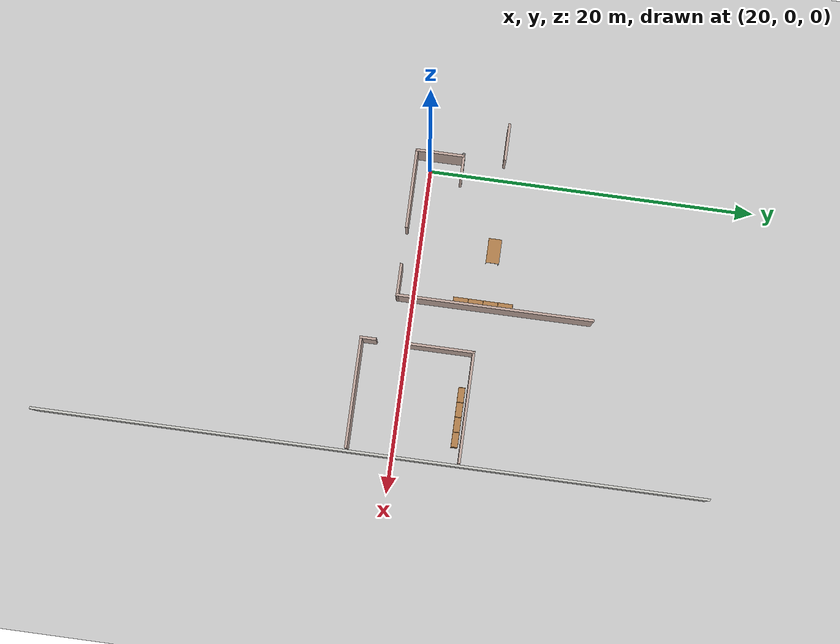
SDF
<sdf version="1.6">
 <world name="default">
  <model name="ground_plane">
   <static>1</static>
   <link name="link">
    <collision name="collision">
     <geometry><plane><normal>0 0 1</normal><size>100 100</size></plane></geometry>
     <surface><friction><ode><mu>100</mu><mu2>50</mu2></ode></friction></surface>
    </collision>
    <visual name="visual">
     <cast_shadows>0</cast_shadows>
     <geometry><plane><normal>0 0 1</normal><size>100 100</size></plane></geometry>
     <material>
      <script><uri>file://media/materials/scripts/gazebo.material</uri><name>Gazebo/Grey</name></script>
     </material>
    </visual>
   </link>
  </model>
  <model name="floor">
   <link name="Wall_11">
    <pose>36.55 -1e-06 0 0 -0 1.5708</pose>
    <visual name="Wall_11_Visual">
     <pose>0 0 1.25 0 -0 0</pose>
     <geometry><box><size>40.75 0.15 2.5</size></box></geometry>
     <material>
      <script><uri>file://media/materials/scripts/gazebo.material</uri><name>Gazebo/CeilingTiled</name></script>
      <ambient>0.760784 0.662745 0.627451 1</ambient>
     </material>
     <meta><layer>0</layer></meta>
    </visual>
    <collision name="Wall_11_Collision">
     <pose>0 0 1.25 0 -0 0</pose>
     <geometry><box><size>40.75 0.15 2.5</size></box></geometry>
     <surface>
      <friction>
       <ode><mu>1</mu><mu2>1</mu2><fdir1>0 0 0</fdir1><slip1>0</slip1><slip2>0</slip2></ode>
       <torsional>
        <coefficient>1</coefficient>
        <patch_radius>0</patch_radius>
        <surface_radius>0</surface_radius>
        <use_patch_radius>1</use_patch_radius>
        <ode><slip>0</slip></ode>
       </torsional>
      </friction>
      <bounce><restitution_coefficient>0</restitution_coefficient><threshold>1e+06</threshold></bounce>
      <contact>
       <collide_without_contact>0</collide_without_contact>
       <collide_without_contact_bitmask>1</collide_without_contact_bitmask>
       <collide_bitmask>1</collide_bitmask>
       <ode>
        <soft_cfm>0</soft_cfm>
        <soft_erp>0.2</soft_erp>
        <kp>1e+13</kp>
        <kd>1</kd>
        <max_vel>0.01</max_vel>
        <min_depth>0</min_depth>
       </ode>
       <bullet>
        <split_impulse>1</split_impulse>
        <split_impulse_penetration_threshold>-0.01</split_impulse_penetration_threshold>
        <soft_cfm>0</soft_cfm>
        <soft_erp>0.2</soft_erp>
        <kp>1e+13</kp>
        <kd>1</kd>
       </bullet>
      </contact>
     </surface>
    </collision>
   </link>
   <link name="Wall_150">
    <pose>16.8049 5.70287 0 0 -0 0</pose>
    <visual name="Wall_150_Visual">
     <pose>0 0 1.25 0 -0 0</pose>
     <geometry><box><size>2.25 0.15 2.5</size></box></geometry>
     <material>
      <script><uri>file://media/materials/scripts/gazebo.material</uri><name>Gazebo/Grey</name></script>
      <ambient>0.760784 0.662745 0.627451 1</ambient>
     </material>
     <meta><layer>0</layer></meta>
    </visual>
    <collision name="Wall_150_Collision">
     <pose>0 0 1.25 0 -0 0</pose>
     <geometry><box><size>2.25 0.15 2.5</size></box></geometry>
     <surface>
      <friction>
       <ode><mu>1</mu><mu2>1</mu2><fdir1>0 0 0</fdir1><slip1>0</slip1><slip2>0</slip2></ode>
       <torsional>
        <coefficient>1</coefficient>
        <patch_radius>0</patch_radius>
        <surface_radius>0</surface_radius>
        <use_patch_radius>1</use_patch_radius>
        <ode><slip>0</slip></ode>
       </torsional>
      </friction>
      <bounce><restitution_coefficient>0</restitution_coefficient><threshold>1e+06</threshold></bounce>
      <contact>
       <collide_without_contact>0</collide_without_contact>
       <collide_without_contact_bitmask>1</collide_without_contact_bitmask>
       <collide_bitmask>1</collide_bitmask>
       <ode>
        <soft_cfm>0</soft_cfm>
        <soft_erp>0.2</soft_erp>
        <kp>1e+13</kp>
        <kd>1</kd>
        <max_vel>0.01</max_vel>
        <min_depth>0</min_depth>
       </ode>
       <bullet>
        <split_impulse>1</split_impulse>
        <split_impulse_penetration_threshold>-0.01</split_impulse_penetration_threshold>
        <soft_cfm>0</soft_cfm>
        <soft_erp>0.2</soft_erp>
        <kp>1e+13</kp>
        <kd>1</kd>
       </bullet>
      </contact>
     </surface>
    </collision>
   </link>
   <link name="Wall_169">
    <pose>33.0299 5.36623 0 0 -0 0</pose>
    <visual name="Wall_169_Visual">
     <pose>0 0 1.25 0 -0 0</pose>
     <geometry><box><size>6.75 0.15 2.5</size></box></geometry>
     <material>
      <script><uri>file://media/materials/scripts/gazebo.material</uri><name>Gazebo/Grey</name></script>
      <ambient>0.760784 0.662745 0.627451 1</ambient>
     </material>
     <meta><layer>0</layer></meta>
    </visual>
    <collision name="Wall_169_Collision">
     <pose>0 0 1.25 0 -0 0</pose>
     <geometry><box><size>6.75 0.15 2.5</size></box></geometry>
     <surface>
      <friction>
       <ode><mu>1</mu><mu2>1</mu2><fdir1>0 0 0</fdir1><slip1>0</slip1><slip2>0</slip2></ode>
       <torsional>
        <coefficient>1</coefficient>
        <patch_radius>0</patch_radius>
        <surface_radius>0</surface_radius>
        <use_patch_radius>1</use_patch_radius>
        <ode><slip>0</slip></ode>
       </torsional>
      </friction>
      <bounce><restitution_coefficient>0</restitution_coefficient><threshold>1e+06</threshold></bounce>
      <contact>
       <collide_without_contact>0</collide_without_contact>
       <collide_without_contact_bitmask>1</collide_without_contact_bitmask>
       <collide_bitmask>1</collide_bitmask>
       <ode>
        <soft_cfm>0</soft_cfm>
        <soft_erp>0.2</soft_erp>
        <kp>1e+13</kp>
        <kd>1</kd>
        <max_vel>0.01</max_vel>
        <min_depth>0</min_depth>
       </ode>
       <bullet>
        <split_impulse>1</split_impulse>
        <split_impulse_penetration_threshold>-0.01</split_impulse_penetration_threshold>
        <soft_cfm>0</soft_cfm>
        <soft_erp>0.2</soft_erp>
        <kp>1e+13</kp>
        <kd>1</kd>
       </bullet>
      </contact>
     </surface>
    </collision>
   </link>
   <link name="Wall_171">
    <pose>29.7299 3.44124 0 0 0 -1.5708</pose>
    <visual name="Wall_171_Visual">
     <pose>0 0 1.25 0 -0 0</pose>
     <geometry><box><size>4 0.15 2.5</size></box></geometry>
     <material>
      <script><uri>file://media/materials/scripts/gazebo.material</uri><name>Gazebo/Grey</name></script>
      <ambient>0.760784 0.662745 0.627451 1</ambient>
     </material>
     <meta><layer>0</layer></meta>
    </visual>
    <collision name="Wall_171_Collision">
     <pose>0 0 1.25 0 -0 0</pose>
     <geometry><box><size>4 0.15 2.5</size></box></geometry>
     <surface>
      <friction>
       <ode><mu>1</mu><mu2>1</mu2><fdir1>0 0 0</fdir1><slip1>0</slip1><slip2>0</slip2></ode>
       <torsional>
        <coefficient>1</coefficient>
        <patch_radius>0</patch_radius>
        <surface_radius>0</surface_radius>
        <use_patch_radius>1</use_patch_radius>
        <ode><slip>0</slip></ode>
       </torsional>
      </friction>
      <bounce><restitution_coefficient>0</restitution_coefficient><threshold>1e+06</threshold></bounce>
      <contact>
       <collide_without_contact>0</collide_without_contact>
       <collide_without_contact_bitmask>1</collide_without_contact_bitmask>
       <collide_bitmask>1</collide_bitmask>
       <ode>
        <soft_cfm>0</soft_cfm>
        <soft_erp>0.2</soft_erp>
        <kp>1e+13</kp>
        <kd>1</kd>
        <max_vel>0.01</max_vel>
        <min_depth>0</min_depth>
       </ode>
       <bullet>
        <split_impulse>1</split_impulse>
        <split_impulse_penetration_threshold>-0.01</split_impulse_penetration_threshold>
        <soft_cfm>0</soft_cfm>
        <soft_erp>0.2</soft_erp>
        <kp>1e+13</kp>
        <kd>1</kd>
       </bullet>
      </contact>
     </surface>
    </collision>
   </link>
   <link name="Wall_173">
    <pose>29.7299 -1.00876 0 0 0 -1.5708</pose>
    <visual name="Wall_173_Visual">
     <pose>0 0 1.25 0 -0 0</pose>
     <geometry><box><size>1 0.15 2.5</size></box></geometry>
     <material>
      <script><uri>file://media/materials/scripts/gazebo.material</uri><name>Gazebo/Grey</name></script>
      <ambient>0.760784 0.662745 0.627451 1</ambient>
     </material>
     <meta><layer>0</layer></meta>
    </visual>
    <collision name="Wall_173_Collision">
     <pose>0 0 1.25 0 -0 0</pose>
     <geometry><box><size>1 0.15 2.5</size></box></geometry>
     <surface>
      <friction>
       <ode><mu>1</mu><mu2>1</mu2><fdir1>0 0 0</fdir1><slip1>0</slip1><slip2>0</slip2></ode>
       <torsional>
        <coefficient>1</coefficient>
        <patch_radius>0</patch_radius>
        <surface_radius>0</surface_radius>
        <use_patch_radius>1</use_patch_radius>
        <ode><slip>0</slip></ode>
       </torsional>
      </friction>
      <bounce><restitution_coefficient>0</restitution_coefficient><threshold>1e+06</threshold></bounce>
      <contact>
       <collide_without_contact>0</collide_without_contact>
       <collide_without_contact_bitmask>1</collide_without_contact_bitmask>
       <collide_bitmask>1</collide_bitmask>
       <ode>
        <soft_cfm>0</soft_cfm>
        <soft_erp>0.2</soft_erp>
        <kp>1e+13</kp>
        <kd>1</kd>
        <max_vel>0.01</max_vel>
        <min_depth>0</min_depth>
       </ode>
       <bullet>
        <split_impulse>1</split_impulse>
        <split_impulse_penetration_threshold>-0.01</split_impulse_penetration_threshold>
        <soft_cfm>0</soft_cfm>
        <soft_erp>0.2</soft_erp>
        <kp>1e+13</kp>
        <kd>1</kd>
       </bullet>
      </contact>
     </surface>
    </collision>
   </link>
   <link name="Wall_174">
    <pose>33.0299 -1.43376 0 0 -0 0</pose>
    <visual name="Wall_174_Visual">
     <pose>0 0 1.25 0 -0 0</pose>
     <geometry><box><size>6.75 0.15 2.5</size></box></geometry>
     <material>
      <script><uri>file://media/materials/scripts/gazebo.material</uri><name>Gazebo/Grey</name></script>
      <ambient>0.760784 0.662745 0.627451 1</ambient>
     </material>
     <meta><layer>0</layer></meta>
    </visual>
    <collision name="Wall_174_Collision">
     <pose>0 0 1.25 0 -0 0</pose>
     <geometry><box><size>6.75 0.15 2.5</size></box></geometry>
     <surface>
      <friction>
       <ode><mu>1</mu><mu2>1</mu2><fdir1>0 0 0</fdir1><slip1>0</slip1><slip2>0</slip2></ode>
       <torsional>
        <coefficient>1</coefficient>
        <patch_radius>0</patch_radius>
        <surface_radius>0</surface_radius>
        <use_patch_radius>1</use_patch_radius>
        <ode><slip>0</slip></ode>
       </torsional>
      </friction>
      <bounce><restitution_coefficient>0</restitution_coefficient><threshold>1e+06</threshold></bounce>
      <contact>
       <collide_without_contact>0</collide_without_contact>
       <collide_without_contact_bitmask>1</collide_without_contact_bitmask>
       <collide_bitmask>1</collide_bitmask>
       <ode>
        <soft_cfm>0</soft_cfm>
        <soft_erp>0.2</soft_erp>
        <kp>1e+13</kp>
        <kd>1</kd>
        <max_vel>0.01</max_vel>
        <min_depth>0</min_depth>
       </ode>
       <bullet>
        <split_impulse>1</split_impulse>
        <split_impulse_penetration_threshold>-0.01</split_impulse_penetration_threshold>
        <soft_cfm>0</soft_cfm>
        <soft_erp>0.2</soft_erp>
        <kp>1e+13</kp>
        <kd>1</kd>
       </bullet>
      </contact>
     </surface>
    </collision>
   </link>
   <link name="Wall_186">
    <pose>18.6942 3.20285 0 0 -0 0</pose>
    <visual name="Wall_186_Visual">
     <pose>0 0 1.25 0 -0 0</pose>
     <geometry><box><size>1.5 0.15 2.5</size></box></geometry>
     <material>
      <script><uri>file://media/materials/scripts/gazebo.material</uri><name>Gazebo/Grey</name></script>
      <ambient>0.760784 0.662745 0.627451 1</ambient>
     </material>
     <meta><layer>0</layer></meta>
    </visual>
    <collision name="Wall_186_Collision">
     <pose>0 0 1.25 0 -0 0</pose>
     <geometry><box><size>1.5 0.15 2.5</size></box></geometry>
     <surface>
      <friction>
       <ode><mu>1</mu><mu2>1</mu2><fdir1>0 0 0</fdir1><slip1>0</slip1><slip2>0</slip2></ode>
       <torsional>
        <coefficient>1</coefficient>
        <patch_radius>0</patch_radius>
        <surface_radius>0</surface_radius>
        <use_patch_radius>1</use_patch_radius>
        <ode><slip>0</slip></ode>
       </torsional>
      </friction>
      <bounce><restitution_coefficient>0</restitution_coefficient><threshold>1e+06</threshold></bounce>
      <contact>
       <collide_without_contact>0</collide_without_contact>
       <collide_without_contact_bitmask>1</collide_without_contact_bitmask>
       <collide_bitmask>1</collide_bitmask>
       <ode>
        <soft_cfm>0</soft_cfm>
        <soft_erp>0.2</soft_erp>
        <kp>1e+13</kp>
        <kd>1</kd>
        <max_vel>0.01</max_vel>
        <min_depth>0</min_depth>
       </ode>
       <bullet>
        <split_impulse>1</split_impulse>
        <split_impulse_penetration_threshold>-0.01</split_impulse_penetration_threshold>
        <soft_cfm>0</soft_cfm>
        <soft_erp>0.2</soft_erp>
        <kp>1e+13</kp>
        <kd>1</kd>
       </bullet>
      </contact>
     </surface>
    </collision>
   </link>
   <link name="Wall_189">
    <pose>26.9058 6.25183 0 0 0 -1.56884</pose>
    <visual name="Wall_189_Visual">
     <pose>0 0 1.25 0 -0 0</pose>
     <geometry><box><size>11.9788 0.15 2.5</size></box></geometry>
     <material>
      <script><uri>file://media/materials/scripts/gazebo.material</uri><name>Gazebo/Grey</name></script>
      <ambient>0.760784 0.662745 0.627451 1</ambient>
     </material>
     <meta><layer>0</layer></meta>
    </visual>
    <collision name="Wall_189_Collision">
     <pose>0 0 1.25 0 -0 0</pose>
     <geometry><box><size>11.9788 0.15 2.5</size></box></geometry>
     <surface>
      <friction>
       <ode><mu>1</mu><mu2>1</mu2><fdir1>0 0 0</fdir1><slip1>0</slip1><slip2>0</slip2></ode>
       <torsional>
        <coefficient>1</coefficient>
        <patch_radius>0</patch_radius>
        <surface_radius>0</surface_radius>
        <use_patch_radius>1</use_patch_radius>
        <ode><slip>0</slip></ode>
       </torsional>
      </friction>
      <bounce><restitution_coefficient>0</restitution_coefficient><threshold>1e+06</threshold></bounce>
      <contact>
       <collide_without_contact>0</collide_without_contact>
       <collide_without_contact_bitmask>1</collide_without_contact_bitmask>
       <collide_bitmask>1</collide_bitmask>
       <ode>
        <soft_cfm>0</soft_cfm>
        <soft_erp>0.2</soft_erp>
        <kp>1e+13</kp>
        <kd>1</kd>
        <max_vel>0.01</max_vel>
        <min_depth>0</min_depth>
       </ode>
       <bullet>
        <split_impulse>1</split_impulse>
        <split_impulse_penetration_threshold>-0.01</split_impulse_penetration_threshold>
        <soft_cfm>0</soft_cfm>
        <soft_erp>0.2</soft_erp>
        <kp>1e+13</kp>
        <kd>1</kd>
       </bullet>
      </contact>
     </surface>
    </collision>
   </link>
   <link name="Wall_190">
    <pose>25.9924 0.352657 0 0 -0 3.14159</pose>
    <visual name="Wall_190_Visual">
     <pose>0 0 1.25 0 -0 0</pose>
     <geometry><box><size>2 0.15 2.5</size></box></geometry>
     <material>
      <script><uri>file://media/materials/scripts/gazebo.material</uri><name>Gazebo/Grey</name></script>
      <ambient>0.760784 0.662745 0.627451 1</ambient>
     </material>
     <meta><layer>0</layer></meta>
    </visual>
    <collision name="Wall_190_Collision">
     <pose>0 0 1.25 0 -0 0</pose>
     <geometry><box><size>2 0.15 2.5</size></box></geometry>
     <surface>
      <friction>
       <ode><mu>1</mu><mu2>1</mu2><fdir1>0 0 0</fdir1><slip1>0</slip1><slip2>0</slip2></ode>
       <torsional>
        <coefficient>1</coefficient>
        <patch_radius>0</patch_radius>
        <surface_radius>0</surface_radius>
        <use_patch_radius>1</use_patch_radius>
        <ode><slip>0</slip></ode>
       </torsional>
      </friction>
      <bounce><restitution_coefficient>0</restitution_coefficient><threshold>1e+06</threshold></bounce>
      <contact>
       <collide_without_contact>0</collide_without_contact>
       <collide_without_contact_bitmask>1</collide_without_contact_bitmask>
       <collide_bitmask>1</collide_bitmask>
       <ode>
        <soft_cfm>0</soft_cfm>
        <soft_erp>0.2</soft_erp>
        <kp>1e+13</kp>
        <kd>1</kd>
        <max_vel>0.01</max_vel>
        <min_depth>0</min_depth>
       </ode>
       <bullet>
        <split_impulse>1</split_impulse>
        <split_impulse_penetration_threshold>-0.01</split_impulse_penetration_threshold>
        <soft_cfm>0</soft_cfm>
        <soft_erp>0.2</soft_erp>
        <kp>1e+13</kp>
        <kd>1</kd>
       </bullet>
      </contact>
     </surface>
    </collision>
   </link>
   <link name="Wall_192">
    <pose>20.372 0.347919 0 0 0 -3.13931</pose>
    <visual name="Wall_192_Visual">
     <pose>0 0 1.25 0 -0 0</pose>
     <geometry><box><size>4.85596 0.15 2.5</size></box></geometry>
     <material>
      <script><uri>file://media/materials/scripts/gazebo.material</uri><name>Gazebo/Grey</name></script>
      <ambient>0.760784 0.662745 0.627451 1</ambient>
     </material>
     <meta><layer>0</layer></meta>
    </visual>
    <collision name="Wall_192_Collision">
     <pose>0 0 1.25 0 -0 0</pose>
     <geometry><box><size>4.85596 0.15 2.5</size></box></geometry>
     <surface>
      <friction>
       <ode><mu>1</mu><mu2>1</mu2><fdir1>0 0 0</fdir1><slip1>0</slip1><slip2>0</slip2></ode>
       <torsional>
        <coefficient>1</coefficient>
        <patch_radius>0</patch_radius>
        <surface_radius>0</surface_radius>
        <use_patch_radius>1</use_patch_radius>
        <ode><slip>0</slip></ode>
       </torsional>
      </friction>
      <bounce><restitution_coefficient>0</restitution_coefficient><threshold>1e+06</threshold></bounce>
      <contact>
       <collide_without_contact>0</collide_without_contact>
       <collide_without_contact_bitmask>1</collide_without_contact_bitmask>
       <collide_bitmask>1</collide_bitmask>
       <ode>
        <soft_cfm>0</soft_cfm>
        <soft_erp>0.2</soft_erp>
        <kp>1e+13</kp>
        <kd>1</kd>
        <max_vel>0.01</max_vel>
        <min_depth>0</min_depth>
       </ode>
       <bullet>
        <split_impulse>1</split_impulse>
        <split_impulse_penetration_threshold>-0.01</split_impulse_penetration_threshold>
        <soft_cfm>0</soft_cfm>
        <soft_erp>0.2</soft_erp>
        <kp>1e+13</kp>
        <kd>1</kd>
       </bullet>
      </contact>
     </surface>
    </collision>
   </link>
   <link name="Wall_98">
    <pose>17.9709 3.19997 0 0 -0 0.059647</pose>
    <visual name="Wall_98_Visual">
     <pose>0 0 1.25 0 -0 0</pose>
     <geometry><box><size>0.246765 0.15 2.5</size></box></geometry>
     <material>
      <script><uri>file://media/materials/scripts/gazebo.material</uri><name>Gazebo/Grey</name></script>
      <ambient>1 1 1 1</ambient>
     </material>
     <meta><layer>0</layer></meta>
    </visual>
    <collision name="Wall_98_Collision">
     <pose>0 0 1.25 0 -0 0</pose>
     <geometry><box><size>0.246765 0.15 2.5</size></box></geometry>
     <surface>
      <friction>
       <ode><mu>1</mu><mu2>1</mu2><fdir1>0 0 0</fdir1><slip1>0</slip1><slip2>0</slip2></ode>
       <torsional>
        <coefficient>1</coefficient>
        <patch_radius>0</patch_radius>
        <surface_radius>0</surface_radius>
        <use_patch_radius>1</use_patch_radius>
        <ode><slip>0</slip></ode>
       </torsional>
      </friction>
      <bounce><restitution_coefficient>0</restitution_coefficient><threshold>1e+06</threshold></bounce>
      <contact>
       <collide_without_contact>0</collide_without_contact>
       <collide_without_contact_bitmask>1</collide_without_contact_bitmask>
       <collide_bitmask>1</collide_bitmask>
       <ode>
        <soft_cfm>0</soft_cfm>
        <soft_erp>0.2</soft_erp>
        <kp>1e+13</kp>
        <kd>1</kd>
        <max_vel>0.01</max_vel>
        <min_depth>0</min_depth>
       </ode>
       <bullet>
        <split_impulse>1</split_impulse>
        <split_impulse_penetration_threshold>-0.01</split_impulse_penetration_threshold>
        <soft_cfm>0</soft_cfm>
        <soft_erp>0.2</soft_erp>
        <kp>1e+13</kp>
        <kd>1</kd>
       </bullet>
      </contact>
     </surface>
    </collision>
   </link>
   <link name="Wall_99">
    <pose>18.0192 1.7803 0 0 0 -1.5708</pose>
    <visual name="Wall_99_Visual">
     <pose>0 0 1.25 0 -0 0</pose>
     <geometry><box><size>2.9951 0.15 2.5</size></box></geometry>
     <material>
      <script><uri>file://media/materials/scripts/gazebo.material</uri><name>Gazebo/Grey</name></script>
      <ambient>0.760784 0.662745 0.627451 1</ambient>
     </material>
     <meta><layer>0</layer></meta>
    </visual>
    <collision name="Wall_99_Collision">
     <pose>0 0 1.25 0 -0 0</pose>
     <geometry><box><size>2.9951 0.15 2.5</size></box></geometry>
     <surface>
      <friction>
       <ode><mu>1</mu><mu2>1</mu2><fdir1>0 0 0</fdir1><slip1>0</slip1><slip2>0</slip2></ode>
       <torsional>
        <coefficient>1</coefficient>
        <patch_radius>0</patch_radius>
        <surface_radius>0</surface_radius>
        <use_patch_radius>1</use_patch_radius>
        <ode><slip>0</slip></ode>
       </torsional>
      </friction>
      <bounce><restitution_coefficient>0</restitution_coefficient><threshold>1e+06</threshold></bounce>
      <contact>
       <collide_without_contact>0</collide_without_contact>
       <collide_without_contact_bitmask>1</collide_without_contact_bitmask>
       <collide_bitmask>1</collide_bitmask>
       <ode>
        <soft_cfm>0</soft_cfm>
        <soft_erp>0.2</soft_erp>
        <kp>1e+13</kp>
        <kd>1</kd>
        <max_vel>0.01</max_vel>
        <min_depth>0</min_depth>
       </ode>
       <bullet>
        <split_impulse>1</split_impulse>
        <split_impulse_penetration_threshold>-0.01</split_impulse_penetration_threshold>
        <soft_cfm>0</soft_cfm>
        <soft_erp>0.2</soft_erp>
        <kp>1e+13</kp>
        <kd>1</kd>
       </bullet>
      </contact>
     </surface>
    </collision>
   </link>
   <static>1</static>
   <pose>1.26361 -1.27025 0 0 -0 0</pose>
  </model>
  <model name="Bookshelf-4_clone_18">
   <model name="bookshelf">
    <static>1</static>
    <link name="link">
     <inertial><mass>1</mass></inertial>
     <collision name="back">
      <pose>0 0.005 0.6 0 -0 0</pose>
      <geometry><box><size>0.9 0.01 1.2</size></box></geometry>
     </collision>
     <visual name="visual1">
      <pose>0 0.005 0.6 0 -0 0</pose>
      <geometry><box><size>0.9 0.01 1.2</size></box></geometry>
      <material>
       <script><uri>file://media/materials/scripts/gazebo.material</uri><name>Gazebo/Wood</name></script>
      </material>
     </visual>
     <collision name="left_side">
      <pose>0.45 -0.195 0.6 0 -0 0</pose>
      <geometry><box><size>0.02 0.4 1.2</size></box></geometry>
     </collision>
     <visual name="visual2">
      <pose>0.45 -0.195 0.6 0 -0 0</pose>
      <geometry><box><size>0.02 0.4 1.2</size></box></geometry>
      <material>
       <script><uri>file://media/materials/scripts/gazebo.material</uri><name>Gazebo/Wood</name></script>
      </material>
     </visual>
     <collision name="right_side">
      <pose>-0.45 -0.195 0.6 0 -0 0</pose>
      <geometry><box><size>0.02 0.4 1.2</size></box></geometry>
     </collision>
     <visual name="visual3">
      <pose>-0.45 -0.195 0.6 0 -0 0</pose>
      <geometry><box><size>0.02 0.4 1.2</size></box></geometry>
      <material>
       <script><uri>file://media/materials/scripts/gazebo.material</uri><name>Gazebo/Wood</name></script>
      </material>
     </visual>
     <collision name="bottom">
      <pose>0 -0.195 0.03 0 -0 0</pose>
      <geometry><box><size>0.88 0.4 0.06</size></box></geometry>
     </collision>
     <visual name="visual4">
      <pose>0 -0.195 0.03 0 -0 0</pose>
      <geometry><box><size>0.88 0.4 0.06</size></box></geometry>
      <material>
       <script><uri>file://media/materials/scripts/gazebo.material</uri><name>Gazebo/Wood</name></script>
      </material>
     </visual>
     <collision name="top">
      <pose>0 -0.195 1.19 0 -0 0</pose>
      <geometry><box><size>0.88 0.4 0.02</size></box></geometry>
     </collision>
     <visual name="visual5">
      <pose>0 -0.195 1.19 0 -0 0</pose>
      <geometry><box><size>0.88 0.4 0.02</size></box></geometry>
      <material>
       <script><uri>file://media/materials/scripts/gazebo.material</uri><name>Gazebo/Wood</name></script>
      </material>
     </visual>
     <collision name="low_shelf">
      <pose>0 -0.195 0.43 0 -0 0</pose>
      <geometry><box><size>0.88 0.4 0.02</size></box></geometry>
     </collision>
     <visual name="visual6">
      <pose>0 -0.195 0.43 0 -0 0</pose>
      <geometry><box><size>0.88 0.4 0.02</size></box></geometry>
      <material>
       <script><uri>file://media/materials/scripts/gazebo.material</uri><name>Gazebo/Wood</name></script>
      </material>
     </visual>
     <collision name="high_shelf">
      <pose>0 -0.195 0.8 0 -0 0</pose>
      <geometry><box><size>0.88 0.4 0.02</size></box></geometry>
     </collision>
     <visual name="visual7">
      <pose>0 -0.195 0.8 0 -0 0</pose>
      <geometry><box><size>0.88 0.4 0.02</size></box></geometry>
      <material>
       <script><uri>file://media/materials/scripts/gazebo.material</uri><name>Gazebo/Wood</name></script>
      </material>
     </visual>
    </link>
    <pose>-1.35671 -0.002097 0 0 -0 0</pose>
   </model>
   <model name="bookshelf_0">
    <static>1</static>
    <link name="link">
     <inertial><mass>1</mass></inertial>
     <collision name="back">
      <pose>0 0.005 0.6 0 -0 0</pose>
      <geometry><box><size>0.9 0.01 1.2</size></box></geometry>
     </collision>
     <visual name="visual1">
      <pose>0 0.005 0.6 0 -0 0</pose>
      <geometry><box><size>0.9 0.01 1.2</size></box></geometry>
      <material>
       <script><uri>file://media/materials/scripts/gazebo.material</uri><name>Gazebo/Wood</name></script>
      </material>
     </visual>
     <collision name="left_side">
      <pose>0.45 -0.195 0.6 0 -0 0</pose>
      <geometry><box><size>0.02 0.4 1.2</size></box></geometry>
     </collision>
     <visual name="visual2">
      <pose>0.45 -0.195 0.6 0 -0 0</pose>
      <geometry><box><size>0.02 0.4 1.2</size></box></geometry>
      <material>
       <script><uri>file://media/materials/scripts/gazebo.material</uri><name>Gazebo/Wood</name></script>
      </material>
     </visual>
     <collision name="right_side">
      <pose>-0.45 -0.195 0.6 0 -0 0</pose>
      <geometry><box><size>0.02 0.4 1.2</size></box></geometry>
     </collision>
     <visual name="visual3">
      <pose>-0.45 -0.195 0.6 0 -0 0</pose>
      <geometry><box><size>0.02 0.4 1.2</size></box></geometry>
      <material>
       <script><uri>file://media/materials/scripts/gazebo.material</uri><name>Gazebo/Wood</name></script>
      </material>
     </visual>
     <collision name="bottom">
      <pose>0 -0.195 0.03 0 -0 0</pose>
      <geometry><box><size>0.88 0.4 0.06</size></box></geometry>
     </collision>
     <visual name="visual4">
      <pose>0 -0.195 0.03 0 -0 0</pose>
      <geometry><box><size>0.88 0.4 0.06</size></box></geometry>
      <material>
       <script><uri>file://media/materials/scripts/gazebo.material</uri><name>Gazebo/Wood</name></script>
      </material>
     </visual>
     <collision name="top">
      <pose>0 -0.195 1.19 0 -0 0</pose>
      <geometry><box><size>0.88 0.4 0.02</size></box></geometry>
     </collision>
     <visual name="visual5">
      <pose>0 -0.195 1.19 0 -0 0</pose>
      <geometry><box><size>0.88 0.4 0.02</size></box></geometry>
      <material>
       <script><uri>file://media/materials/scripts/gazebo.material</uri><name>Gazebo/Wood</name></script>
      </material>
     </visual>
     <collision name="low_shelf">
      <pose>0 -0.195 0.43 0 -0 0</pose>
      <geometry><box><size>0.88 0.4 0.02</size></box></geometry>
     </collision>
     <visual name="visual6">
      <pose>0 -0.195 0.43 0 -0 0</pose>
      <geometry><box><size>0.88 0.4 0.02</size></box></geometry>
      <material>
       <script><uri>file://media/materials/scripts/gazebo.material</uri><name>Gazebo/Wood</name></script>
      </material>
     </visual>
     <collision name="high_shelf">
      <pose>0 -0.195 0.8 0 -0 0</pose>
      <geometry><box><size>0.88 0.4 0.02</size></box></geometry>
     </collision>
     <visual name="visual7">
      <pose>0 -0.195 0.8 0 -0 0</pose>
      <geometry><box><size>0.88 0.4 0.02</size></box></geometry>
      <material>
       <script><uri>file://media/materials/scripts/gazebo.material</uri><name>Gazebo/Wood</name></script>
      </material>
     </visual>
    </link>
    <pose>-0.452974 0.001386 0 0 -0 0</pose>
   </model>
   <model name="bookshelf_1">
    <static>1</static>
    <link name="link">
     <inertial><mass>1</mass></inertial>
     <collision name="back">
      <pose>0 0.005 0.6 0 -0 0</pose>
      <geometry><box><size>0.9 0.01 1.2</size></box></geometry>
     </collision>
     <visual name="visual1">
      <pose>0 0.005 0.6 0 -0 0</pose>
      <geometry><box><size>0.9 0.01 1.2</size></box></geometry>
      <material>
       <script><uri>file://media/materials/scripts/gazebo.material</uri><name>Gazebo/Wood</name></script>
      </material>
     </visual>
     <collision name="left_side">
      <pose>0.45 -0.195 0.6 0 -0 0</pose>
      <geometry><box><size>0.02 0.4 1.2</size></box></geometry>
     </collision>
     <visual name="visual2">
      <pose>0.45 -0.195 0.6 0 -0 0</pose>
      <geometry><box><size>0.02 0.4 1.2</size></box></geometry>
      <material>
       <script><uri>file://media/materials/scripts/gazebo.material</uri><name>Gazebo/Wood</name></script>
      </material>
     </visual>
     <collision name="right_side">
      <pose>-0.45 -0.195 0.6 0 -0 0</pose>
      <geometry><box><size>0.02 0.4 1.2</size></box></geometry>
     </collision>
     <visual name="visual3">
      <pose>-0.45 -0.195 0.6 0 -0 0</pose>
      <geometry><box><size>0.02 0.4 1.2</size></box></geometry>
      <material>
       <script><uri>file://media/materials/scripts/gazebo.material</uri><name>Gazebo/Wood</name></script>
      </material>
     </visual>
     <collision name="bottom">
      <pose>0 -0.195 0.03 0 -0 0</pose>
      <geometry><box><size>0.88 0.4 0.06</size></box></geometry>
     </collision>
     <visual name="visual4">
      <pose>0 -0.195 0.03 0 -0 0</pose>
      <geometry><box><size>0.88 0.4 0.06</size></box></geometry>
      <material>
       <script><uri>file://media/materials/scripts/gazebo.material</uri><name>Gazebo/Wood</name></script>
      </material>
     </visual>
     <collision name="top">
      <pose>0 -0.195 1.19 0 -0 0</pose>
      <geometry><box><size>0.88 0.4 0.02</size></box></geometry>
     </collision>
     <visual name="visual5">
      <pose>0 -0.195 1.19 0 -0 0</pose>
      <geometry><box><size>0.88 0.4 0.02</size></box></geometry>
      <material>
       <script><uri>file://media/materials/scripts/gazebo.material</uri><name>Gazebo/Wood</name></script>
      </material>
     </visual>
     <collision name="low_shelf">
      <pose>0 -0.195 0.43 0 -0 0</pose>
      <geometry><box><size>0.88 0.4 0.02</size></box></geometry>
     </collision>
     <visual name="visual6">
      <pose>0 -0.195 0.43 0 -0 0</pose>
      <geometry><box><size>0.88 0.4 0.02</size></box></geometry>
      <material>
       <script><uri>file://media/materials/scripts/gazebo.material</uri><name>Gazebo/Wood</name></script>
      </material>
     </visual>
     <collision name="high_shelf">
      <pose>0 -0.195 0.8 0 -0 0</pose>
      <geometry><box><size>0.88 0.4 0.02</size></box></geometry>
     </collision>
     <visual name="visual7">
      <pose>0 -0.195 0.8 0 -0 0</pose>
      <geometry><box><size>0.88 0.4 0.02</size></box></geometry>
      <material>
       <script><uri>file://media/materials/scripts/gazebo.material</uri><name>Gazebo/Wood</name></script>
      </material>
     </visual>
    </link>
    <pose>0.450456 0.000733 0 0 -0 0</pose>
   </model>
   <model name="bookshelf_2">
    <static>1</static>
    <link name="link">
     <inertial><mass>1</mass></inertial>
     <collision name="back">
      <pose>0 0.005 0.6 0 -0 0</pose>
      <geometry><box><size>0.9 0.01 1.2</size></box></geometry>
     </collision>
     <visual name="visual1">
      <pose>0 0.005 0.6 0 -0 0</pose>
      <geometry><box><size>0.9 0.01 1.2</size></box></geometry>
      <material>
       <script><uri>file://media/materials/scripts/gazebo.material</uri><name>Gazebo/Wood</name></script>
      </material>
     </visual>
     <collision name="left_side">
      <pose>0.45 -0.195 0.6 0 -0 0</pose>
      <geometry><box><size>0.02 0.4 1.2</size></box></geometry>
     </collision>
     <visual name="visual2">
      <pose>0.45 -0.195 0.6 0 -0 0</pose>
      <geometry><box><size>0.02 0.4 1.2</size></box></geometry>
      <material>
       <script><uri>file://media/materials/scripts/gazebo.material</uri><name>Gazebo/Wood</name></script>
      </material>
     </visual>
     <collision name="right_side">
      <pose>-0.45 -0.195 0.6 0 -0 0</pose>
      <geometry><box><size>0.02 0.4 1.2</size></box></geometry>
     </collision>
     <visual name="visual3">
      <pose>-0.45 -0.195 0.6 0 -0 0</pose>
      <geometry><box><size>0.02 0.4 1.2</size></box></geometry>
      <material>
       <script><uri>file://media/materials/scripts/gazebo.material</uri><name>Gazebo/Wood</name></script>
      </material>
     </visual>
     <collision name="bottom">
      <pose>0 -0.195 0.03 0 -0 0</pose>
      <geometry><box><size>0.88 0.4 0.06</size></box></geometry>
     </collision>
     <visual name="visual4">
      <pose>0 -0.195 0.03 0 -0 0</pose>
      <geometry><box><size>0.88 0.4 0.06</size></box></geometry>
      <material>
       <script><uri>file://media/materials/scripts/gazebo.material</uri><name>Gazebo/Wood</name></script>
      </material>
     </visual>
     <collision name="top">
      <pose>0 -0.195 1.19 0 -0 0</pose>
      <geometry><box><size>0.88 0.4 0.02</size></box></geometry>
     </collision>
     <visual name="visual5">
      <pose>0 -0.195 1.19 0 -0 0</pose>
      <geometry><box><size>0.88 0.4 0.02</size></box></geometry>
      <material>
       <script><uri>file://media/materials/scripts/gazebo.material</uri><name>Gazebo/Wood</name></script>
      </material>
     </visual>
     <collision name="low_shelf">
      <pose>0 -0.195 0.43 0 -0 0</pose>
      <geometry><box><size>0.88 0.4 0.02</size></box></geometry>
     </collision>
     <visual name="visual6">
      <pose>0 -0.195 0.43 0 -0 0</pose>
      <geometry><box><size>0.88 0.4 0.02</size></box></geometry>
      <material>
       <script><uri>file://media/materials/scripts/gazebo.material</uri><name>Gazebo/Wood</name></script>
      </material>
     </visual>
     <collision name="high_shelf">
      <pose>0 -0.195 0.8 0 -0 0</pose>
      <geometry><box><size>0.88 0.4 0.02</size></box></geometry>
     </collision>
     <visual name="visual7">
      <pose>0 -0.195 0.8 0 -0 0</pose>
      <geometry><box><size>0.88 0.4 0.02</size></box></geometry>
      <material>
       <script><uri>file://media/materials/scripts/gazebo.material</uri><name>Gazebo/Wood</name></script>
      </material>
     </visual>
    </link>
    <pose>1.35922 -1.7e-05 0 0 -0 0</pose>
   </model>
   <static>0</static>
   <pose>34.892 3.88671 0 0 -0 0</pose>
  </model>
  <model name="Bookshelf-4_clone_31_clone_1_clone">
   <model name="bookshelf">
    <static>1</static>
    <link name="link">
     <inertial><mass>1</mass></inertial>
     <collision name="back">
      <pose>0 0.005 0.6 0 -0 0</pose>
      <geometry><box><size>0.9 0.01 1.2</size></box></geometry>
     </collision>
     <visual name="visual1">
      <pose>0 0.005 0.6 0 -0 0</pose>
      <geometry><box><size>0.9 0.01 1.2</size></box></geometry>
      <material>
       <script><uri>file://media/materials/scripts/gazebo.material</uri><name>Gazebo/Wood</name></script>
      </material>
     </visual>
     <collision name="left_side">
      <pose>0.45 -0.195 0.6 0 -0 0</pose>
      <geometry><box><size>0.02 0.4 1.2</size></box></geometry>
     </collision>
     <visual name="visual2">
      <pose>0.45 -0.195 0.6 0 -0 0</pose>
      <geometry><box><size>0.02 0.4 1.2</size></box></geometry>
      <material>
       <script><uri>file://media/materials/scripts/gazebo.material</uri><name>Gazebo/Wood</name></script>
      </material>
     </visual>
     <collision name="right_side">
      <pose>-0.45 -0.195 0.6 0 -0 0</pose>
      <geometry><box><size>0.02 0.4 1.2</size></box></geometry>
     </collision>
     <visual name="visual3">
      <pose>-0.45 -0.195 0.6 0 -0 0</pose>
      <geometry><box><size>0.02 0.4 1.2</size></box></geometry>
      <material>
       <script><uri>file://media/materials/scripts/gazebo.material</uri><name>Gazebo/Wood</name></script>
      </material>
     </visual>
     <collision name="bottom">
      <pose>0 -0.195 0.03 0 -0 0</pose>
      <geometry><box><size>0.88 0.4 0.06</size></box></geometry>
     </collision>
     <visual name="visual4">
      <pose>0 -0.195 0.03 0 -0 0</pose>
      <geometry><box><size>0.88 0.4 0.06</size></box></geometry>
      <material>
       <script><uri>file://media/materials/scripts/gazebo.material</uri><name>Gazebo/Wood</name></script>
      </material>
     </visual>
     <collision name="top">
      <pose>0 -0.195 1.19 0 -0 0</pose>
      <geometry><box><size>0.88 0.4 0.02</size></box></geometry>
     </collision>
     <visual name="visual5">
      <pose>0 -0.195 1.19 0 -0 0</pose>
      <geometry><box><size>0.88 0.4 0.02</size></box></geometry>
      <material>
       <script><uri>file://media/materials/scripts/gazebo.material</uri><name>Gazebo/Wood</name></script>
      </material>
     </visual>
     <collision name="low_shelf">
      <pose>0 -0.195 0.43 0 -0 0</pose>
      <geometry><box><size>0.88 0.4 0.02</size></box></geometry>
     </collision>
     <visual name="visual6">
      <pose>0 -0.195 0.43 0 -0 0</pose>
      <geometry><box><size>0.88 0.4 0.02</size></box></geometry>
      <material>
       <script><uri>file://media/materials/scripts/gazebo.material</uri><name>Gazebo/Wood</name></script>
      </material>
     </visual>
     <collision name="high_shelf">
      <pose>0 -0.195 0.8 0 -0 0</pose>
      <geometry><box><size>0.88 0.4 0.02</size></box></geometry>
     </collision>
     <visual name="visual7">
      <pose>0 -0.195 0.8 0 -0 0</pose>
      <geometry><box><size>0.88 0.4 0.02</size></box></geometry>
      <material>
       <script><uri>file://media/materials/scripts/gazebo.material</uri><name>Gazebo/Wood</name></script>
      </material>
     </visual>
    </link>
    <pose>-1.35671 -0.002097 0 0 -0 0</pose>
   </model>
   <model name="bookshelf_0">
    <static>1</static>
    <link name="link">
     <inertial><mass>1</mass></inertial>
     <collision name="back">
      <pose>0 0.005 0.6 0 -0 0</pose>
      <geometry><box><size>0.9 0.01 1.2</size></box></geometry>
     </collision>
     <visual name="visual1">
      <pose>0 0.005 0.6 0 -0 0</pose>
      <geometry><box><size>0.9 0.01 1.2</size></box></geometry>
      <material>
       <script><uri>file://media/materials/scripts/gazebo.material</uri><name>Gazebo/Wood</name></script>
      </material>
     </visual>
     <collision name="left_side">
      <pose>0.45 -0.195 0.6 0 -0 0</pose>
      <geometry><box><size>0.02 0.4 1.2</size></box></geometry>
     </collision>
     <visual name="visual2">
      <pose>0.45 -0.195 0.6 0 -0 0</pose>
      <geometry><box><size>0.02 0.4 1.2</size></box></geometry>
      <material>
       <script><uri>file://media/materials/scripts/gazebo.material</uri><name>Gazebo/Wood</name></script>
      </material>
     </visual>
     <collision name="right_side">
      <pose>-0.45 -0.195 0.6 0 -0 0</pose>
      <geometry><box><size>0.02 0.4 1.2</size></box></geometry>
     </collision>
     <visual name="visual3">
      <pose>-0.45 -0.195 0.6 0 -0 0</pose>
      <geometry><box><size>0.02 0.4 1.2</size></box></geometry>
      <material>
       <script><uri>file://media/materials/scripts/gazebo.material</uri><name>Gazebo/Wood</name></script>
      </material>
     </visual>
     <collision name="bottom">
      <pose>0 -0.195 0.03 0 -0 0</pose>
      <geometry><box><size>0.88 0.4 0.06</size></box></geometry>
     </collision>
     <visual name="visual4">
      <pose>0 -0.195 0.03 0 -0 0</pose>
      <geometry><box><size>0.88 0.4 0.06</size></box></geometry>
      <material>
       <script><uri>file://media/materials/scripts/gazebo.material</uri><name>Gazebo/Wood</name></script>
      </material>
     </visual>
     <collision name="top">
      <pose>0 -0.195 1.19 0 -0 0</pose>
      <geometry><box><size>0.88 0.4 0.02</size></box></geometry>
     </collision>
     <visual name="visual5">
      <pose>0 -0.195 1.19 0 -0 0</pose>
      <geometry><box><size>0.88 0.4 0.02</size></box></geometry>
      <material>
       <script><uri>file://media/materials/scripts/gazebo.material</uri><name>Gazebo/Wood</name></script>
      </material>
     </visual>
     <collision name="low_shelf">
      <pose>0 -0.195 0.43 0 -0 0</pose>
      <geometry><box><size>0.88 0.4 0.02</size></box></geometry>
     </collision>
     <visual name="visual6">
      <pose>0 -0.195 0.43 0 -0 0</pose>
      <geometry><box><size>0.88 0.4 0.02</size></box></geometry>
      <material>
       <script><uri>file://media/materials/scripts/gazebo.material</uri><name>Gazebo/Wood</name></script>
      </material>
     </visual>
     <collision name="high_shelf">
      <pose>0 -0.195 0.8 0 -0 0</pose>
      <geometry><box><size>0.88 0.4 0.02</size></box></geometry>
     </collision>
     <visual name="visual7">
      <pose>0 -0.195 0.8 0 -0 0</pose>
      <geometry><box><size>0.88 0.4 0.02</size></box></geometry>
      <material>
       <script><uri>file://media/materials/scripts/gazebo.material</uri><name>Gazebo/Wood</name></script>
      </material>
     </visual>
    </link>
    <pose>-0.452974 0.001386 0 0 -0 0</pose>
   </model>
   <model name="bookshelf_1">
    <static>1</static>
    <link name="link">
     <inertial><mass>1</mass></inertial>
     <collision name="back">
      <pose>0 0.005 0.6 0 -0 0</pose>
      <geometry><box><size>0.9 0.01 1.2</size></box></geometry>
     </collision>
     <visual name="visual1">
      <pose>0 0.005 0.6 0 -0 0</pose>
      <geometry><box><size>0.9 0.01 1.2</size></box></geometry>
      <material>
       <script><uri>file://media/materials/scripts/gazebo.material</uri><name>Gazebo/Wood</name></script>
      </material>
     </visual>
     <collision name="left_side">
      <pose>0.45 -0.195 0.6 0 -0 0</pose>
      <geometry><box><size>0.02 0.4 1.2</size></box></geometry>
     </collision>
     <visual name="visual2">
      <pose>0.45 -0.195 0.6 0 -0 0</pose>
      <geometry><box><size>0.02 0.4 1.2</size></box></geometry>
      <material>
       <script><uri>file://media/materials/scripts/gazebo.material</uri><name>Gazebo/Wood</name></script>
      </material>
     </visual>
     <collision name="right_side">
      <pose>-0.45 -0.195 0.6 0 -0 0</pose>
      <geometry><box><size>0.02 0.4 1.2</size></box></geometry>
     </collision>
     <visual name="visual3">
      <pose>-0.45 -0.195 0.6 0 -0 0</pose>
      <geometry><box><size>0.02 0.4 1.2</size></box></geometry>
      <material>
       <script><uri>file://media/materials/scripts/gazebo.material</uri><name>Gazebo/Wood</name></script>
      </material>
     </visual>
     <collision name="bottom">
      <pose>0 -0.195 0.03 0 -0 0</pose>
      <geometry><box><size>0.88 0.4 0.06</size></box></geometry>
     </collision>
     <visual name="visual4">
      <pose>0 -0.195 0.03 0 -0 0</pose>
      <geometry><box><size>0.88 0.4 0.06</size></box></geometry>
      <material>
       <script><uri>file://media/materials/scripts/gazebo.material</uri><name>Gazebo/Wood</name></script>
      </material>
     </visual>
     <collision name="top">
      <pose>0 -0.195 1.19 0 -0 0</pose>
      <geometry><box><size>0.88 0.4 0.02</size></box></geometry>
     </collision>
     <visual name="visual5">
      <pose>0 -0.195 1.19 0 -0 0</pose>
      <geometry><box><size>0.88 0.4 0.02</size></box></geometry>
      <material>
       <script><uri>file://media/materials/scripts/gazebo.material</uri><name>Gazebo/Wood</name></script>
      </material>
     </visual>
     <collision name="low_shelf">
      <pose>0 -0.195 0.43 0 -0 0</pose>
      <geometry><box><size>0.88 0.4 0.02</size></box></geometry>
     </collision>
     <visual name="visual6">
      <pose>0 -0.195 0.43 0 -0 0</pose>
      <geometry><box><size>0.88 0.4 0.02</size></box></geometry>
      <material>
       <script><uri>file://media/materials/scripts/gazebo.material</uri><name>Gazebo/Wood</name></script>
      </material>
     </visual>
     <collision name="high_shelf">
      <pose>0 -0.195 0.8 0 -0 0</pose>
      <geometry><box><size>0.88 0.4 0.02</size></box></geometry>
     </collision>
     <visual name="visual7">
      <pose>0 -0.195 0.8 0 -0 0</pose>
      <geometry><box><size>0.88 0.4 0.02</size></box></geometry>
      <material>
       <script><uri>file://media/materials/scripts/gazebo.material</uri><name>Gazebo/Wood</name></script>
      </material>
     </visual>
    </link>
    <pose>0.450456 0.000733 0 0 -0 0</pose>
   </model>
   <model name="bookshelf_2">
    <static>1</static>
    <link name="link">
     <inertial><mass>1</mass></inertial>
     <collision name="back">
      <pose>0 0.005 0.6 0 -0 0</pose>
      <geometry><box><size>0.9 0.01 1.2</size></box></geometry>
     </collision>
     <visual name="visual1">
      <pose>0 0.005 0.6 0 -0 0</pose>
      <geometry><box><size>0.9 0.01 1.2</size></box></geometry>
      <material>
       <script><uri>file://media/materials/scripts/gazebo.material</uri><name>Gazebo/Wood</name></script>
      </material>
     </visual>
     <collision name="left_side">
      <pose>0.45 -0.195 0.6 0 -0 0</pose>
      <geometry><box><size>0.02 0.4 1.2</size></box></geometry>
     </collision>
     <visual name="visual2">
      <pose>0.45 -0.195 0.6 0 -0 0</pose>
      <geometry><box><size>0.02 0.4 1.2</size></box></geometry>
      <material>
       <script><uri>file://media/materials/scripts/gazebo.material</uri><name>Gazebo/Wood</name></script>
      </material>
     </visual>
     <collision name="right_side">
      <pose>-0.45 -0.195 0.6 0 -0 0</pose>
      <geometry><box><size>0.02 0.4 1.2</size></box></geometry>
     </collision>
     <visual name="visual3">
      <pose>-0.45 -0.195 0.6 0 -0 0</pose>
      <geometry><box><size>0.02 0.4 1.2</size></box></geometry>
      <material>
       <script><uri>file://media/materials/scripts/gazebo.material</uri><name>Gazebo/Wood</name></script>
      </material>
     </visual>
     <collision name="bottom">
      <pose>0 -0.195 0.03 0 -0 0</pose>
      <geometry><box><size>0.88 0.4 0.06</size></box></geometry>
     </collision>
     <visual name="visual4">
      <pose>0 -0.195 0.03 0 -0 0</pose>
      <geometry><box><size>0.88 0.4 0.06</size></box></geometry>
      <material>
       <script><uri>file://media/materials/scripts/gazebo.material</uri><name>Gazebo/Wood</name></script>
      </material>
     </visual>
     <collision name="top">
      <pose>0 -0.195 1.19 0 -0 0</pose>
      <geometry><box><size>0.88 0.4 0.02</size></box></geometry>
     </collision>
     <visual name="visual5">
      <pose>0 -0.195 1.19 0 -0 0</pose>
      <geometry><box><size>0.88 0.4 0.02</size></box></geometry>
      <material>
       <script><uri>file://media/materials/scripts/gazebo.material</uri><name>Gazebo/Wood</name></script>
      </material>
     </visual>
     <collision name="low_shelf">
      <pose>0 -0.195 0.43 0 -0 0</pose>
      <geometry><box><size>0.88 0.4 0.02</size></box></geometry>
     </collision>
     <visual name="visual6">
      <pose>0 -0.195 0.43 0 -0 0</pose>
      <geometry><box><size>0.88 0.4 0.02</size></box></geometry>
      <material>
       <script><uri>file://media/materials/scripts/gazebo.material</uri><name>Gazebo/Wood</name></script>
      </material>
     </visual>
     <collision name="high_shelf">
      <pose>0 -0.195 0.8 0 -0 0</pose>
      <geometry><box><size>0.88 0.4 0.02</size></box></geometry>
     </collision>
     <visual name="visual7">
      <pose>0 -0.195 0.8 0 -0 0</pose>
      <geometry><box><size>0.88 0.4 0.02</size></box></geometry>
      <material>
       <script><uri>file://media/materials/scripts/gazebo.material</uri><name>Gazebo/Wood</name></script>
      </material>
     </visual>
    </link>
    <pose>1.35922 -1.7e-05 0 0 -0 0</pose>
   </model>
   <static>0</static>
   <pose>28.0744 4.25888 0 0 0 -1.5707</pose>
  </model>
  <model name="table_clone">
   <static>1</static>
   <link name="link">
    <collision name="surface">
     <pose>0 0 1 0 -0 0</pose>
     <geometry><box><size>1.5 0.8 0.03</size></box></geometry>
     <surface><friction><ode><mu>0.6</mu><mu2>0.6</mu2></ode></friction></surface>
    </collision>
    <visual name="visual1">
     <pose>0 0 1 0 -0 0</pose>
     <geometry><box><size>1.5 0.8 0.03</size></box></geometry>
     <material>
      <script><uri>file://media/materials/scripts/gazebo.material</uri><name>Gazebo/Wood</name></script>
     </material>
    </visual>
    <collision name="front_left_leg">
     <pose>0.68 0.38 0.5 0 -0 0</pose>
     <geometry><cylinder><radius>0.02</radius><length>1</length></cylinder></geometry>
    </collision>
    <visual name="front_left_leg">
     <pose>0.68 0.38 0.5 0 -0 0</pose>
     <geometry><cylinder><radius>0.02</radius><length>1</length></cylinder></geometry>
     <material>
      <script><uri>file://media/materials/scripts/gazebo.material</uri><name>Gazebo/Grey</name></script>
     </material>
    </visual>
    <collision name="front_right_leg">
     <pose>0.68 -0.38 0.5 0 -0 0</pose>
     <geometry><cylinder><radius>0.02</radius><length>1</length></cylinder></geometry>
    </collision>
    <visual name="front_right_leg">
     <pose>0.68 -0.38 0.5 0 -0 0</pose>
     <geometry><cylinder><radius>0.02</radius><length>1</length></cylinder></geometry>
     <material>
      <script><uri>file://media/materials/scripts/gazebo.material</uri><name>Gazebo/Grey</name></script>
     </material>
    </visual>
    <collision name="back_right_leg">
     <pose>-0.68 -0.38 0.5 0 -0 0</pose>
     <geometry><cylinder><radius>0.02</radius><length>1</length></cylinder></geometry>
    </collision>
    <visual name="back_right_leg">
     <pose>-0.68 -0.38 0.5 0 -0 0</pose>
     <geometry><cylinder><radius>0.02</radius><length>1</length></cylinder></geometry>
     <material>
      <script><uri>file://media/materials/scripts/gazebo.material</uri><name>Gazebo/Grey</name></script>
     </material>
    </visual>
    <collision name="back_left_leg">
     <pose>-0.68 0.38 0.5 0 -0 0</pose>
     <geometry><cylinder><radius>0.02</radius><length>1</length></cylinder></geometry>
    </collision>
    <visual name="back_left_leg">
     <pose>-0.68 0.38 0.5 0 -0 0</pose>
     <geometry><cylinder><radius>0.02</radius><length>1</length></cylinder></geometry>
     <material>
      <script><uri>file://media/materials/scripts/gazebo.material</uri><name>Gazebo/Grey</name></script>
     </material>
    </visual>
   </link>
   <pose>24.5542 4.50856 0 0 -0 0</pose>
  </model>
 </world>
</sdf>
